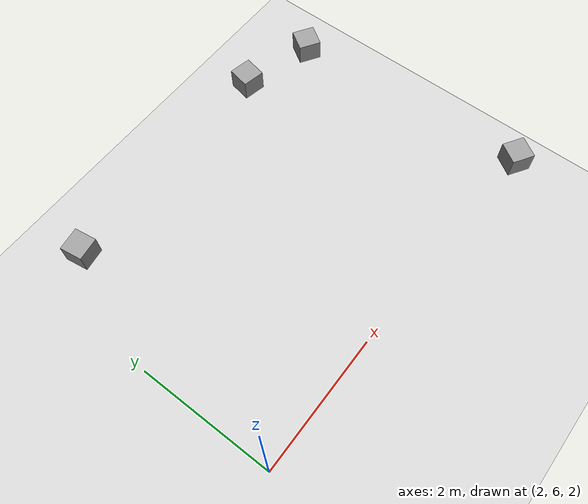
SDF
<sdf version="1.7">
 <world name="default">
  <model name="ground_plane">
   <static>1</static>
   <link name="link">
    <collision name="collision">
     <geometry><plane><normal>0 0 1</normal><size>100 100</size></plane></geometry>
     <surface><friction><ode><mu>100</mu><mu2>50</mu2></ode></friction></surface>
    </collision>
    <visual name="visual">
     <cast_shadows>0</cast_shadows>
     <geometry><plane><normal>0 0 1</normal><size>100 100</size></plane></geometry>
     <material>
      <script><uri>file://media/materials/scripts/gazebo.material</uri><name>Gazebo/Grey</name></script>
     </material>
    </visual>
   </link>
  </model>
  <model name="unit_box_clone">
   <pose>6.74006 9.05942 3 0 -0 1</pose>
   <link name="link">
    <inertial>
     <mass>1</mass>
     <inertia>
      <ixx>0.166667</ixx>
      <ixy>0</ixy>
      <ixz>0</ixz>
      <iyy>0.166667</iyy>
      <iyz>0</iyz>
      <izz>0.166667</izz>
     </inertia>
    </inertial>
    <collision name="collision"><geometry><box><size>0.3 0.3 0.3</size></box></geometry></collision>
    <visual name="visual">
     <geometry><box><size>0.3 0.3 0.3</size></box></geometry>
     <material>
      <script><name>Gazebo/Grey</name><uri>file://media/materials/scripts/gazebo.material</uri></script>
     </material>
    </visual>
   </link>
  </model>
  <model name="unit_box_clone_0">
   <pose>5.76531 9.33454 3 0 0 -0.2</pose>
   <link name="link">
    <inertial>
     <mass>1</mass>
     <inertia>
      <ixx>0.166667</ixx>
      <ixy>0</ixy>
      <ixz>0</ixz>
      <iyy>0.166667</iyy>
      <iyz>0</iyz>
      <izz>0.166667</izz>
     </inertia>
    </inertial>
    <collision name="collision"><geometry><box><size>0.3 0.3 0.3</size></box></geometry></collision>
    <visual name="visual">
     <geometry><box><size>0.3 0.3 0.3</size></box></geometry>
     <material>
      <script><name>Gazebo/Grey</name><uri>file://media/materials/scripts/gazebo.material</uri></script>
     </material>
    </visual>
   </link>
  </model>
  <model name="unit_box_clone_3">
   <pose>6.88396 5.77537 3 0 -0 1</pose>
   <link name="link">
    <inertial>
     <mass>1</mass>
     <inertia>
      <ixx>0.166667</ixx>
      <ixy>0</ixy>
      <ixz>0</ixz>
      <iyy>0.166667</iyy>
      <iyz>0</iyz>
      <izz>0.166667</izz>
     </inertia>
    </inertial>
    <collision name="collision"><geometry><box><size>0.3 0.3 0.3</size></box></geometry></collision>
    <visual name="visual">
     <geometry><box><size>0.3 0.3 0.3</size></box></geometry>
     <material>
      <script><name>Gazebo/Grey</name><uri>file://media/materials/scripts/gazebo.material</uri></script>
     </material>
    </visual>
   </link>
  </model>
  <model name="unit_box_clone_7">
   <pose>2.54692 9.28152 3 0 -0 0.15</pose>
   <link name="link">
    <inertial>
     <mass>1</mass>
     <inertia>
      <ixx>0.166667</ixx>
      <ixy>0</ixy>
      <ixz>0</ixz>
      <iyy>0.166667</iyy>
      <iyz>0</iyz>
      <izz>0.166667</izz>
     </inertia>
    </inertial>
    <collision name="collision"><geometry><box><size>0.3 0.3 0.3</size></box></geometry></collision>
    <visual name="visual">
     <geometry><box><size>0.3 0.3 0.3</size></box></geometry>
     <material>
      <script><name>Gazebo/Grey</name><uri>file://media/materials/scripts/gazebo.material</uri></script>
     </material>
    </visual>
   </link>
  </model>
 </world>
</sdf>
